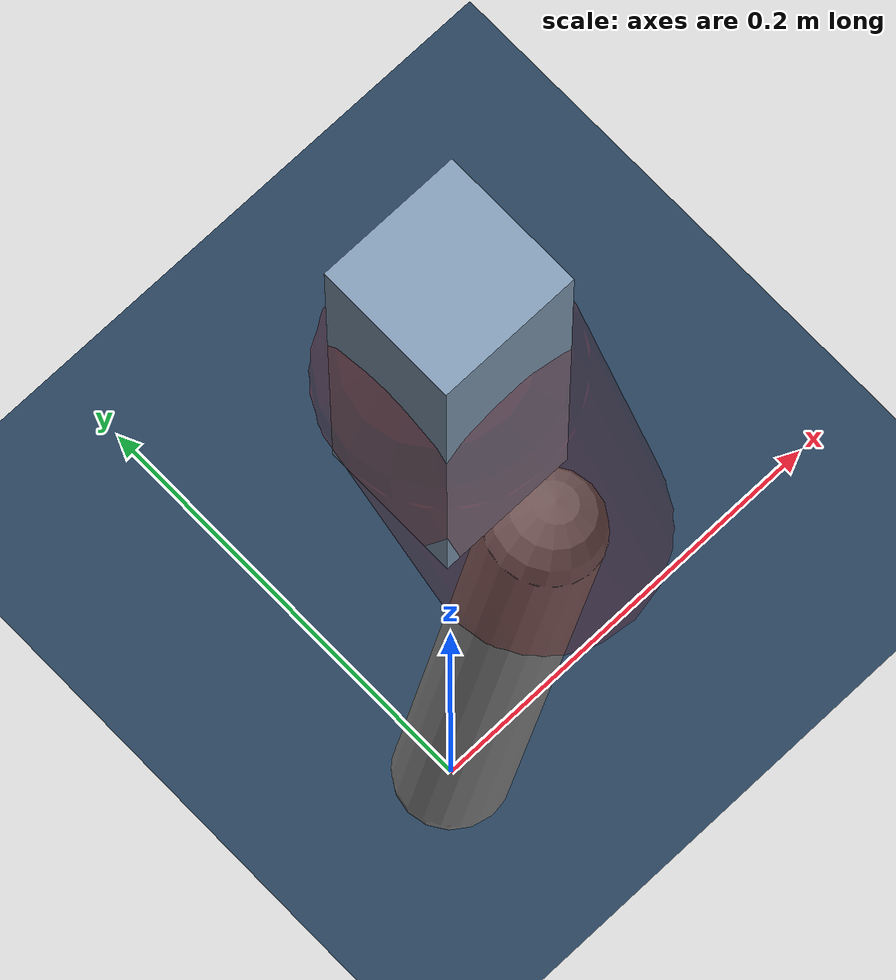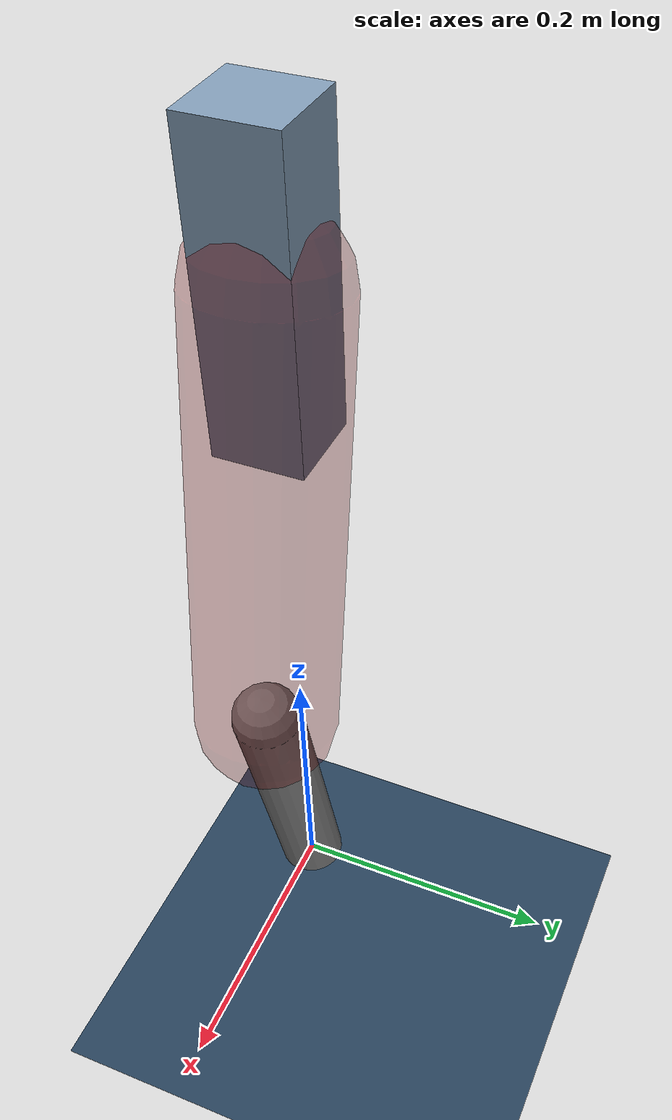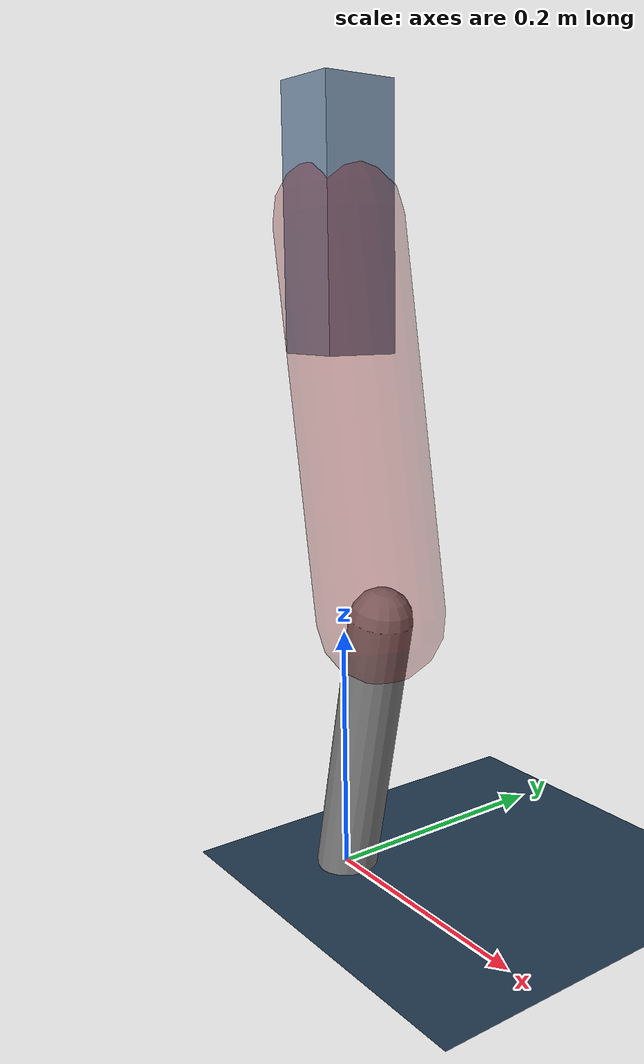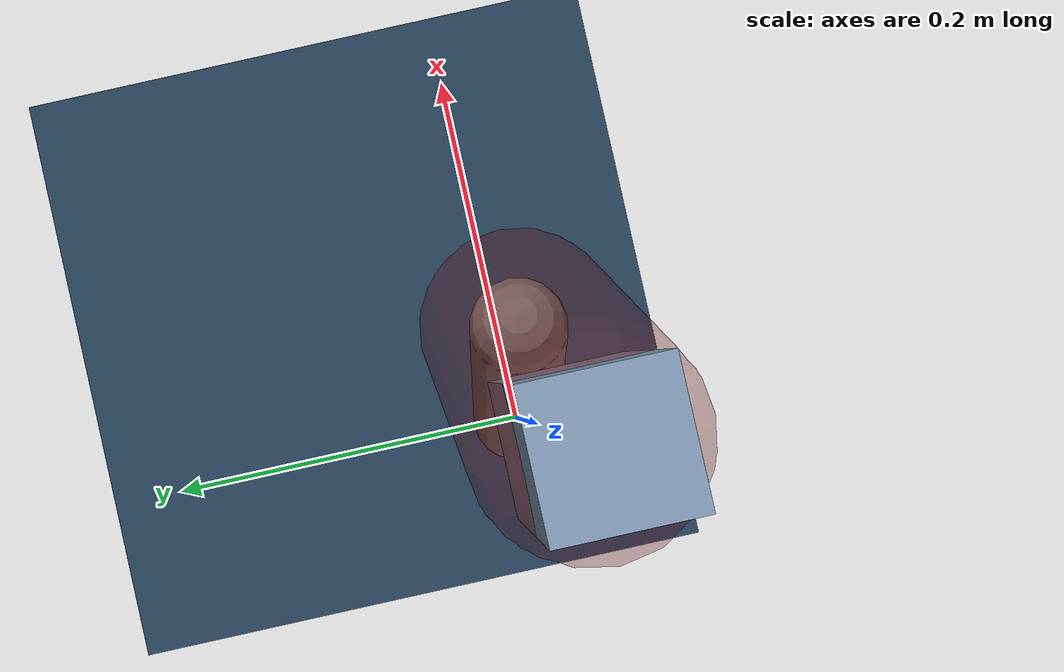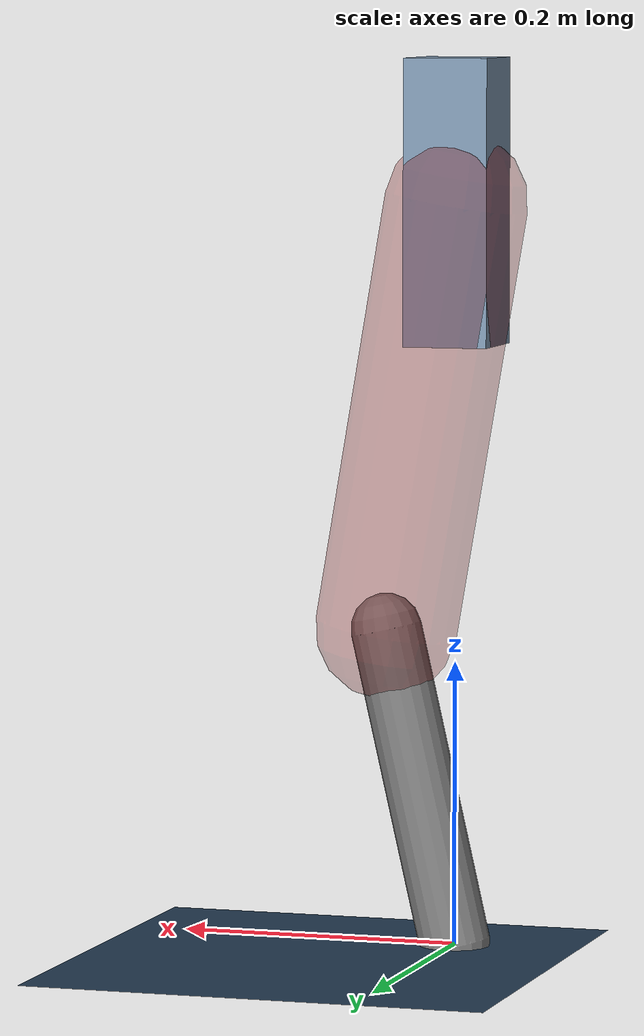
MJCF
<mujoco model="Hopper2D">
	<compiler inertiafromgeom="true" angle="radian" />
	<option timestep="0.001" integrator="implicit" cone="elliptic" solver="Newton" tolerance="1e-10" />

	<default>
		<geom contype="1" conaffinity="1" condim="3" friction="2 0.005 0.0001" solref="0.005 1" />
		<joint limited="true" damping="0.1" />
	</default>

	<asset>
		<texture name="skybox" type="skybox" builtin="gradient" rgb1=".4 .6 .8" rgb2="0 0 0" width="800" height="800" />
		<texture name="grid" type="2d" builtin="checker" rgb1=".1 .2 .3" rgb2=".2 .3 .4" width="300" height="300" mark="edge" markrgb=".2 .3 .4" />
		<material name="ground" texture="grid" texrepeat="1 1" texuniform="true" reflectance="0.1" />
		<material name="leg" rgba="0.5 0.6 0.7 1" />
	</asset>

	<worldbody>

		<geom name="floor" type="plane" size="5 5 0.25" material="ground" />

		<light directional="false" diffuse="0.8 0.8 0.8" specular="0.3 0.3 0.3" pos="0 0 2" dir="0 0 -1" />
		<light mode="targetbodycom" target="base" directional="false" diffuse="0.8 0.8 0.8" specular="0.3 0.3 0.3" pos="0 0 2" dir="0 0 -1" />

		<camera name="fixed" pos="0 -2 1" xyaxes="1 0 0 0 0 1" />
		<camera name="tracking" mode="trackcom" pos="0 -3 1" />

		<body name="root" pos="0 0 0.5229817030864174">
			<joint name="slide_x" type="slide" axis="1 0 0" range="-100 100" />
			<joint name="slide_z" type="slide" axis="0 0 1" range="0 10" />

			<body name="base" pos="0 0 0">
				<geom name="torso" type="box" size="0.03 0.03 0.1" mass="2.002" material="leg" />

				<body name="link1" pos="0 0 0" euler="0 1.4033466196116746 0">
					<joint type="hinge" axis="0 -1 0" pos="0 0 0" name="hinge1" limited="true" range="-3.14 3.14" stiffness="0" damping="0.1" />
					<geom name="thigh" type="capsule" fromto="0 0 0 0.30492855329583723 0 0" size="0.05" rgba="0.5 0 0 0.3" mass="1.0021070938987606" />

					<body name="link2" pos="0.30492855329583723 0 0" euler="0 0.39218794115793726 0">
						<joint type="hinge" axis="0 -1 0" pos="0 0 0" name="hinge2" limited="true" range="-3.14 3.14" stiffness="0" damping="0.1" />
						<geom name="shank" type="capsule" fromto="0 0 0 0.22805314979058025 0 0" size="0.025" mass="0.4243478348115222" />

					</body>
				</body>
			</body>
		</body>
	</worldbody>

	<actuator>
		<motor name="torque1" joint="hinge1" ctrlrange="-76.8253327865506 76.8253327865506" ctrllimited="true" gear="1" />
		<motor name="torque2" joint="hinge2" ctrlrange="-79.28681340712654 79.28681340712654" ctrllimited="true" gear="1" />
	</actuator>
</mujoco>
